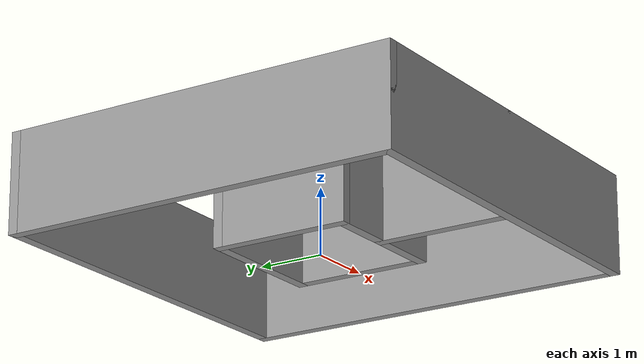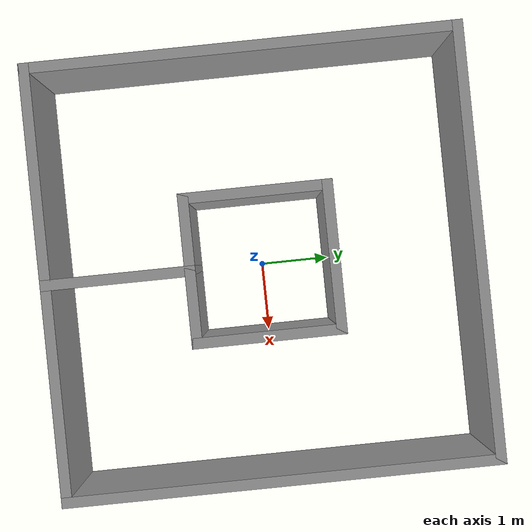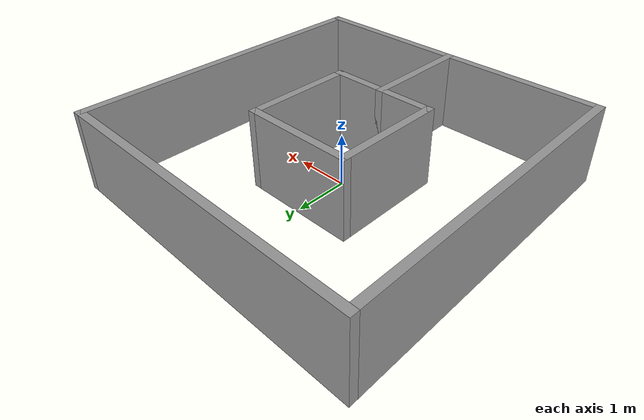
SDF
<?xml version='1.0'?>
<sdf version='1.6'>
  <model name='loop_3_3'>
    <pose frame=''>0 0 0 0 -0 0</pose>
    <link name='Wall_10'>
      <collision name='Wall_10_Collision'>
        <geometry>
          <box>
            <size>6.15 0.15 1.5</size>
          </box>
        </geometry>
        <pose frame=''>0 0 0.75 0 -0 0</pose>
      </collision>
      <visual name='Wall_10_Visual'>
        <pose frame=''>0 0 0.75 0 -0 0</pose>
        <geometry>
          <box>
            <size>6.15 0.15 1.5</size>
          </box>
        </geometry>
        <material>
          <script>
            <uri>file://media/materials/scripts/gazebo.material</uri>
            <name>Gazebo/Grey</name>
          </script>
          <ambient>1 1 1 1</ambient>
        </material>
        <meta>
          <layer>0</layer>
        </meta>
      </visual>
      <pose frame=''>3 0 0 0 -0 1.5708</pose>
    </link>
    <link name='Wall_11'>
      <collision name='Wall_11_Collision'>
        <geometry>
          <box>
            <size>6.15 0.15 1.5</size>
          </box>
        </geometry>
        <pose frame=''>0 0 0.75 0 -0 0</pose>
      </collision>
      <visual name='Wall_11_Visual'>
        <pose frame=''>0 0 0.75 0 -0 0</pose>
        <geometry>
          <box>
            <size>6.15 0.15 1.5</size>
          </box>
        </geometry>
        <material>
          <script>
            <uri>file://media/materials/scripts/gazebo.material</uri>
            <name>Gazebo/Grey</name>
          </script>
          <ambient>1 1 1 1</ambient>
        </material>
        <meta>
          <layer>0</layer>
        </meta>
      </visual>
      <pose frame=''>0 3 0 0 -0 3.14159</pose>
    </link>
    <link name='Wall_13'>
      <collision name='Wall_13_Collision'>
        <geometry>
          <box>
            <size>2.15 0.15 1.5</size>
          </box>
        </geometry>
        <pose frame=''>0 0 0.75 0 -0 0</pose>
      </collision>
      <visual name='Wall_13_Visual'>
        <pose frame=''>0 0 0.75 0 -0 0</pose>
        <geometry>
          <box>
            <size>2.15 0.15 1.5</size>
          </box>
        </geometry>
        <material>
          <script>
            <uri>file://media/materials/scripts/gazebo.material</uri>
            <name>Gazebo/Grey</name>
          </script>
          <ambient>1 1 1 1</ambient>
        </material>
        <meta>
          <layer>0</layer>
        </meta>
      </visual>
      <pose frame=''>-1 0 0 0 -0 -1.5708</pose>
    </link>
    <link name='Wall_14'>
      <collision name='Wall_14_Collision'>
        <geometry>
          <box>
            <size>2.15 0.15 1.5</size>
          </box>
        </geometry>
        <pose frame=''>0 0 0.75 0 -0 0</pose>
      </collision>
      <visual name='Wall_14_Visual'>
        <pose frame=''>0 0 0.75 0 -0 0</pose>
        <geometry>
          <box>
            <size>2.15 0.15 1.5</size>
          </box>
        </geometry>
        <material>
          <script>
            <uri>file://media/materials/scripts/gazebo.material</uri>
            <name>Gazebo/Grey</name>
          </script>
          <ambient>1 1 1 1</ambient>
        </material>
        <meta>
          <layer>0</layer>
        </meta>
      </visual>
      <pose frame=''>0 -1 0 0 -0 0</pose>
    </link>
    <link name='Wall_15'>
      <collision name='Wall_15_Collision'>
        <geometry>
          <box>
            <size>2.15 0.15 1.5</size>
          </box>
        </geometry>
        <pose frame=''>0 0 0.75 0 -0 0</pose>
      </collision>
      <visual name='Wall_15_Visual'>
        <pose frame=''>0 0 0.75 0 -0 0</pose>
        <geometry>
          <box>
            <size>2.15 0.15 1.5</size>
          </box>
        </geometry>
        <material>
          <script>
            <uri>file://media/materials/scripts/gazebo.material</uri>
            <name>Gazebo/Grey</name>
          </script>
          <ambient>1 1 1 1</ambient>
        </material>
        <meta>
          <layer>0</layer>
        </meta>
      </visual>
      <pose frame=''>1 0 0 0 -0 1.5708</pose>
    </link>
    <link name='Wall_16'>
      <collision name='Wall_16_Collision'>
        <geometry>
          <box>
            <size>2.15 0.15 1.5</size>
          </box>
        </geometry>
        <pose frame=''>0 0 0.75 0 -0 0</pose>
      </collision>
      <visual name='Wall_16_Visual'>
        <pose frame=''>0 0 0.75 0 -0 0</pose>
        <geometry>
          <box>
            <size>2.15 0.15 1.5</size>
          </box>
        </geometry>
        <material>
          <script>
            <uri>file://media/materials/scripts/gazebo.material</uri>
            <name>Gazebo/Grey</name>
          </script>
          <ambient>1 1 1 1</ambient>
        </material>
        <meta>
          <layer>0</layer>
        </meta>
      </visual>
      <pose frame=''>0 1 0 0 -0 3.14159</pose>
    </link>
    <link name='Wall_18'>
      <collision name='Wall_18_Collision'>
        <geometry>
          <box>
            <size>2.15 0.15 1.5</size>
          </box>
        </geometry>
        <pose frame=''>0 0 0.75 0 -0 0</pose>
      </collision>
      <visual name='Wall_18_Visual'>
        <pose frame=''>0 0 0.75 0 -0 0</pose>
        <geometry>
          <box>
            <size>2.15 0.15 1.5</size>
          </box>
        </geometry>
        <material>
          <script>
            <uri>file://media/materials/scripts/gazebo.material</uri>
            <name>Gazebo/Grey</name>
          </script>
          <ambient>1 1 1 1</ambient>
        </material>
        <meta>
          <layer>0</layer>
        </meta>
      </visual>
      <pose frame=''>0 -2 0 0 -0 -1.5708</pose>
    </link>
    <link name='Wall_8'>
      <collision name='Wall_8_Collision'>
        <geometry>
          <box>
            <size>6.15 0.15 1.5</size>
          </box>
        </geometry>
        <pose frame=''>0 0 0.75 0 -0 0</pose>
      </collision>
      <visual name='Wall_8_Visual'>
        <pose frame=''>0 0 0.75 0 -0 0</pose>
        <geometry>
          <box>
            <size>6.15 0.15 1.5</size>
          </box>
        </geometry>
        <material>
          <script>
            <uri>file://media/materials/scripts/gazebo.material</uri>
            <name>Gazebo/Grey</name>
          </script>
          <ambient>1 1 1 1</ambient>
        </material>
        <meta>
          <layer>0</layer>
        </meta>
      </visual>
      <pose frame=''>-3 0 0 0 -0 -1.5708</pose>
    </link>
    <link name='Wall_9'>
      <collision name='Wall_9_Collision'>
        <geometry>
          <box>
            <size>6.15 0.15 1.5</size>
          </box>
        </geometry>
        <pose frame=''>0 0 0.75 0 -0 0</pose>
      </collision>
      <visual name='Wall_9_Visual'>
        <pose frame=''>0 0 0.75 0 -0 0</pose>
        <geometry>
          <box>
            <size>6.15 0.15 1.5</size>
          </box>
        </geometry>
        <material>
          <script>
            <uri>file://media/materials/scripts/gazebo.material</uri>
            <name>Gazebo/Grey</name>
          </script>
          <ambient>1 1 1 1</ambient>
        </material>
        <meta>
          <layer>0</layer>
        </meta>
      </visual>
      <pose frame=''>0 -3 0 0 -0 0</pose>
    </link>
    <static>1</static>
  </model>
</sdf>
